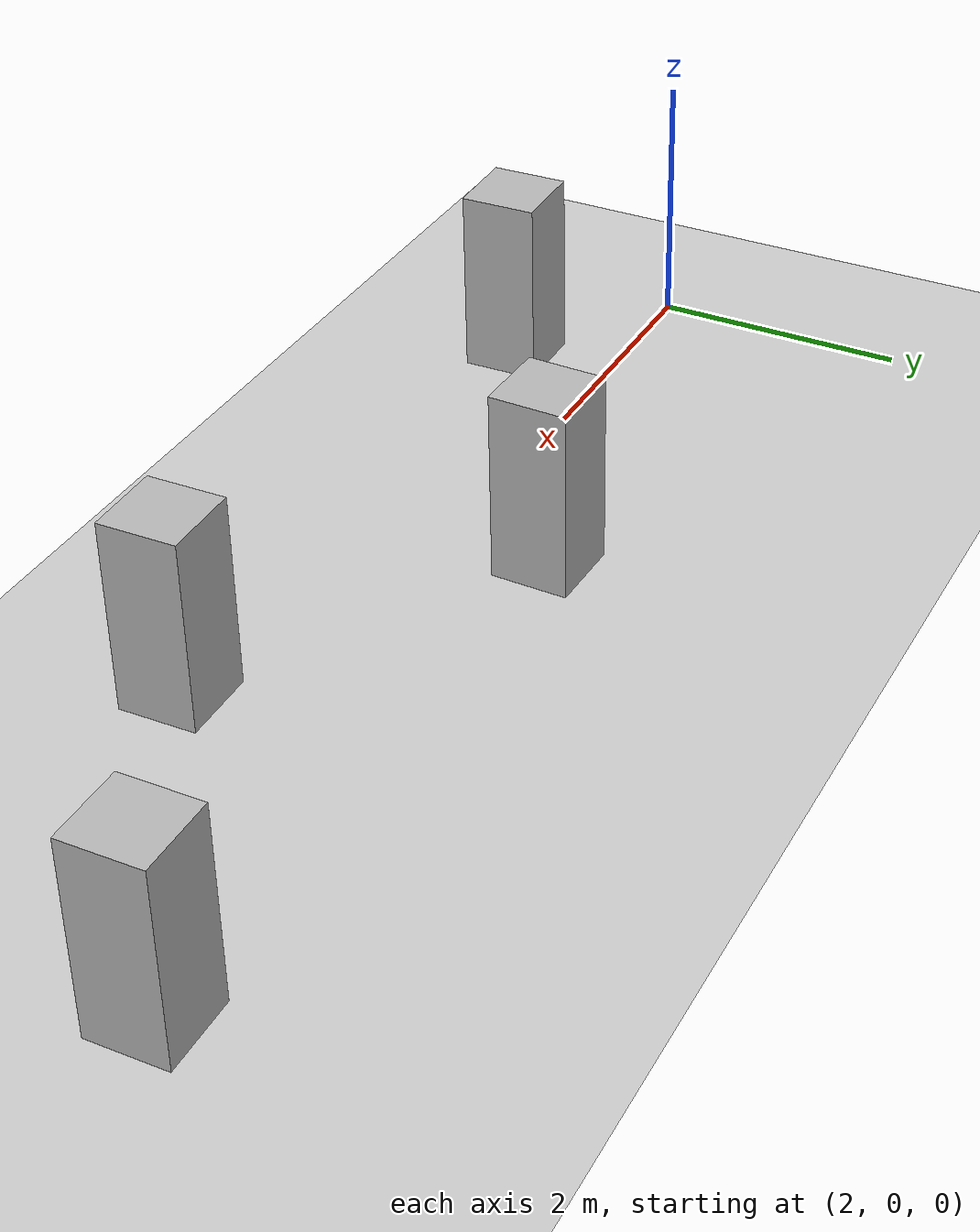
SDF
<?xml version="1.0"?>
<sdf version="1.6">
  <world name="v2-04g-r4-r1-static-s5097">
    <gravity>0 0 -9.81</gravity>
    <physics name="v2_deterministic" type="ode">
      <max_step_size>0.002</max_step_size>
      <real_time_update_rate>500</real_time_update_rate>
    </physics>
    <include>
      <uri>model://sun</uri>
    </include>
    <include>
      <uri>model://ground_plane</uri>
    </include>
    <model name="pillar-1">
      <static>true</static>
      <pose>3.258631441 -0.809512111 0.750000000 0 0 0.028415962</pose>
      <link name="link">
        <collision name="collision">
          <geometry>
            <box>
              <size>0.600000 0.600000 1.500000</size>
            </box>
          </geometry>
        </collision>
        <visual name="visual">
          <geometry>
            <box>
              <size>0.600000 0.600000 1.500000</size>
            </box>
          </geometry>
        </visual>
      </link>
    </model>
    <model name="pillar-2">
      <static>true</static>
      <pose>5.822178963 0.764141308 0.750000000 0 0 -0.026198347</pose>
      <link name="link">
        <collision name="collision">
          <geometry>
            <box>
              <size>0.600000 0.600000 1.500000</size>
            </box>
          </geometry>
        </collision>
        <visual name="visual">
          <geometry>
            <box>
              <size>0.600000 0.600000 1.500000</size>
            </box>
          </geometry>
        </visual>
      </link>
    </model>
    <model name="pillar-3">
      <static>true</static>
      <pose>8.246952566 -0.773309373 0.750000000 0 0 0.019723039</pose>
      <link name="link">
        <collision name="collision">
          <geometry>
            <box>
              <size>0.600000 0.600000 1.500000</size>
            </box>
          </geometry>
        </collision>
        <visual name="visual">
          <geometry>
            <box>
              <size>0.600000 0.600000 1.500000</size>
            </box>
          </geometry>
        </visual>
      </link>
    </model>
    <model name="pillar-4">
      <static>true</static>
      <pose>10.783606730 0.741654336 0.750000000 0 0 0.010617744</pose>
      <link name="link">
        <collision name="collision">
          <geometry>
            <box>
              <size>0.600000 0.600000 1.500000</size>
            </box>
          </geometry>
        </collision>
        <visual name="visual">
          <geometry>
            <box>
              <size>0.600000 0.600000 1.500000</size>
            </box>
          </geometry>
        </visual>
      </link>
    </model>
  </world>
</sdf>
